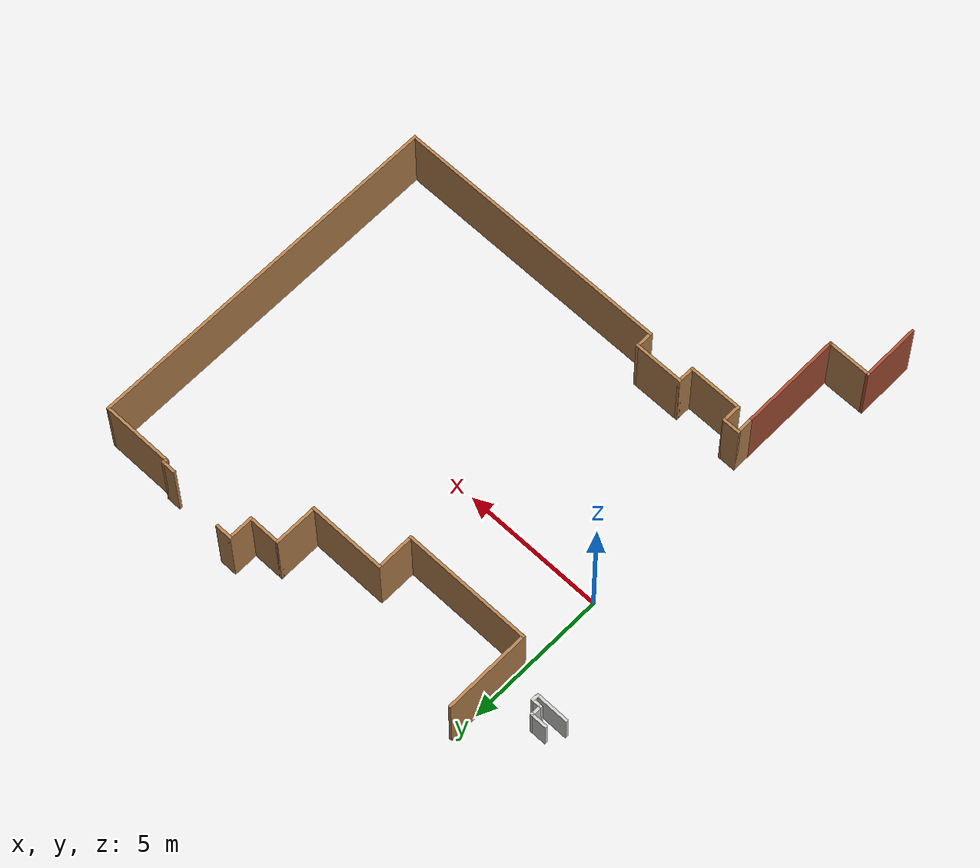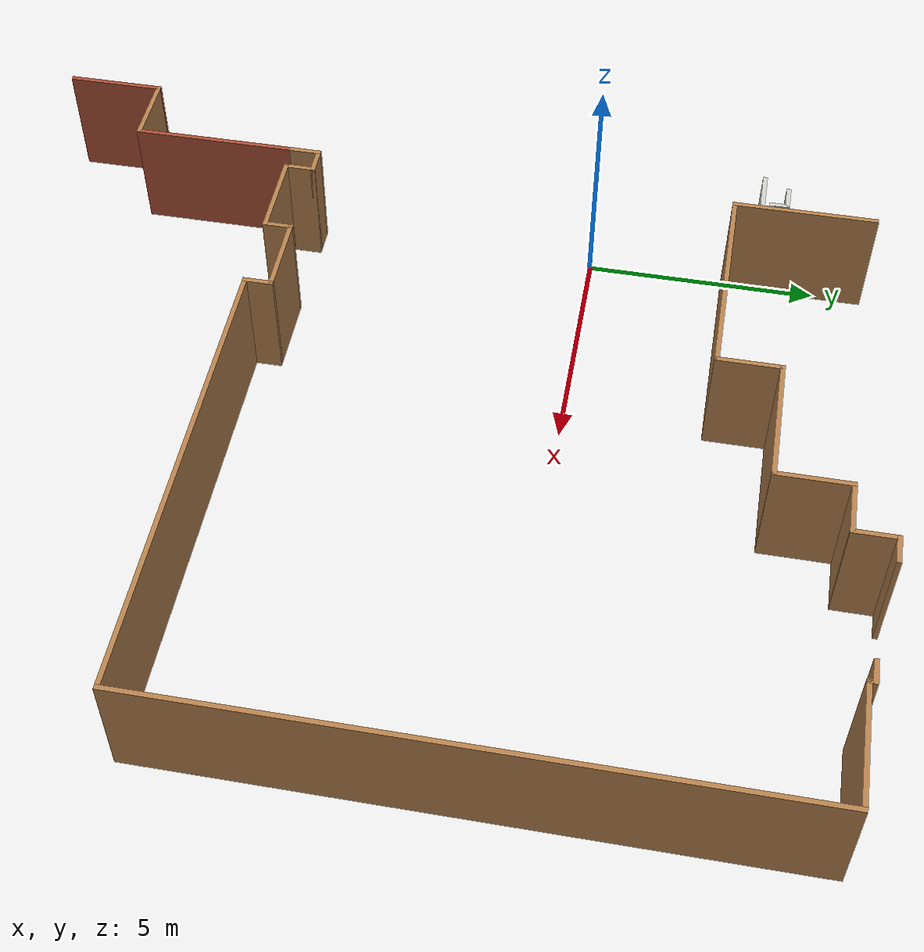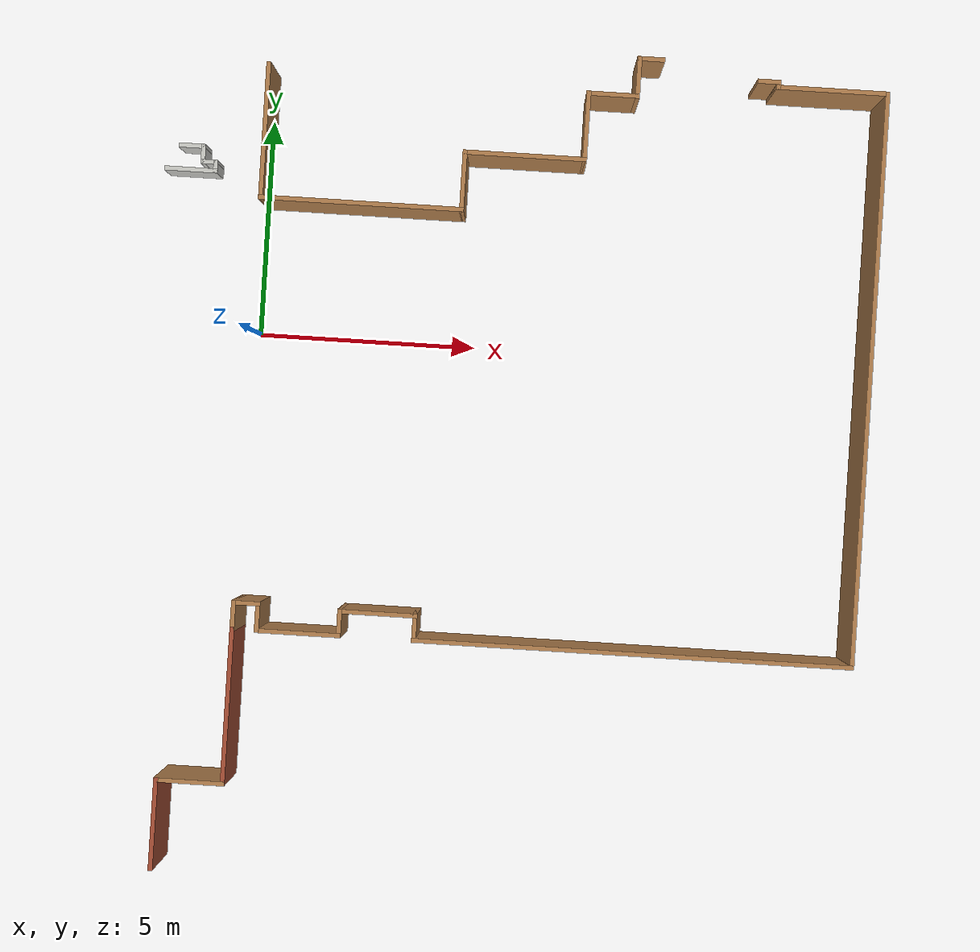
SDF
<sdf version="1.7">
 <model name="miraikan_3F_gate_and_elevator">
  <link name="Wall_119">
   <pose>-3.8625 -11.67 0 0 -0 1.5708</pose>
   <visual name="Wall_119_Visual">
    <pose>0 0 1.25 0 -0 0</pose>
    <geometry><box><size>2.1 0.1 2.5</size></box></geometry>
    <material>
     <script><uri>file://media/materials/scripts/gazebo.material</uri><name>Gazebo/Bricks</name></script>
     <ambient>1 1 1 1</ambient>
     <shader type="pixel"/>
    </material>
    <meta><layer>0</layer></meta>
   </visual>
   <collision name="Wall_119_Collision">
    <pose>0 0 1.25 0 -0 0</pose>
    <geometry><box><size>2.1 0.1 2.5</size></box></geometry>
    <surface>
     <friction>
      <ode><mu>1</mu><mu2>1</mu2><fdir1>0 0 0</fdir1><slip1>0</slip1><slip2>0</slip2></ode>
      <torsional>
       <coefficient>1</coefficient>
       <patch_radius>0</patch_radius>
       <surface_radius>0</surface_radius>
       <use_patch_radius>1</use_patch_radius>
       <ode><slip>0</slip></ode>
      </torsional>
     </friction>
     <bounce><restitution_coefficient>0</restitution_coefficient><threshold>1e+06</threshold></bounce>
     <contact>
      <collide_without_contact>0</collide_without_contact>
      <collide_without_contact_bitmask>1</collide_without_contact_bitmask>
      <collide_bitmask>1</collide_bitmask>
      <ode>
       <soft_cfm>0</soft_cfm>
       <soft_erp>0.2</soft_erp>
       <kp>1e+13</kp>
       <kd>1</kd>
       <max_vel>0.01</max_vel>
       <min_depth>0</min_depth>
      </ode>
      <bullet>
       <split_impulse>1</split_impulse>
       <split_impulse_penetration_threshold>-0.01</split_impulse_penetration_threshold>
       <soft_cfm>0</soft_cfm>
       <soft_erp>0.2</soft_erp>
       <kp>1e+13</kp>
       <kd>1</kd>
      </bullet>
     </contact>
    </surface>
   </collision>
  </link>
  <link name="Wall_121">
   <pose>-3.1125 -10.67 0 0 -0 0</pose>
   <visual name="Wall_121_Visual">
    <pose>0 0 1.25 0 -0 0</pose>
    <geometry><box><size>1.6 0.1 2.5</size></box></geometry>
    <material>
     <script><uri>file://media/materials/scripts/gazebo.material</uri><name>Gazebo/Wood</name></script>
     <ambient>1 1 1 1</ambient>
     <shader type="pixel"/>
    </material>
    <meta><layer>0</layer></meta>
   </visual>
   <collision name="Wall_121_Collision">
    <pose>0 0 1.25 0 -0 0</pose>
    <geometry><box><size>1.6 0.1 2.5</size></box></geometry>
    <surface>
     <friction>
      <ode><mu>1</mu><mu2>1</mu2><fdir1>0 0 0</fdir1><slip1>0</slip1><slip2>0</slip2></ode>
      <torsional>
       <coefficient>1</coefficient>
       <patch_radius>0</patch_radius>
       <surface_radius>0</surface_radius>
       <use_patch_radius>1</use_patch_radius>
       <ode><slip>0</slip></ode>
      </torsional>
     </friction>
     <bounce><restitution_coefficient>0</restitution_coefficient><threshold>1e+06</threshold></bounce>
     <contact>
      <collide_without_contact>0</collide_without_contact>
      <collide_without_contact_bitmask>1</collide_without_contact_bitmask>
      <collide_bitmask>1</collide_bitmask>
      <ode>
       <soft_cfm>0</soft_cfm>
       <soft_erp>0.2</soft_erp>
       <kp>1e+13</kp>
       <kd>1</kd>
       <max_vel>0.01</max_vel>
       <min_depth>0</min_depth>
      </ode>
      <bullet>
       <split_impulse>1</split_impulse>
       <split_impulse_penetration_threshold>-0.01</split_impulse_penetration_threshold>
       <soft_cfm>0</soft_cfm>
       <soft_erp>0.2</soft_erp>
       <kp>1e+13</kp>
       <kd>1</kd>
      </bullet>
     </contact>
    </surface>
   </collision>
  </link>
  <link name="Wall_123">
   <pose>-2.3625 -8.92 0 0 -0 1.5708</pose>
   <visual name="Wall_123_Visual">
    <pose>0 0 1.25 0 -0 0</pose>
    <geometry><box><size>3.6 0.1 2.5</size></box></geometry>
    <material>
     <script><uri>file://media/materials/scripts/gazebo.material</uri><name>Gazebo/Bricks</name></script>
     <ambient>1 1 1 1</ambient>
     <shader type="pixel"/>
    </material>
    <meta><layer>0</layer></meta>
   </visual>
   <collision name="Wall_123_Collision">
    <pose>0 0 1.25 0 -0 0</pose>
    <geometry><box><size>3.6 0.1 2.5</size></box></geometry>
    <surface>
     <friction>
      <ode><mu>1</mu><mu2>1</mu2><fdir1>0 0 0</fdir1><slip1>0</slip1><slip2>0</slip2></ode>
      <torsional>
       <coefficient>1</coefficient>
       <patch_radius>0</patch_radius>
       <surface_radius>0</surface_radius>
       <use_patch_radius>1</use_patch_radius>
       <ode><slip>0</slip></ode>
      </torsional>
     </friction>
     <bounce><restitution_coefficient>0</restitution_coefficient><threshold>1e+06</threshold></bounce>
     <contact>
      <collide_without_contact>0</collide_without_contact>
      <collide_without_contact_bitmask>1</collide_without_contact_bitmask>
      <collide_bitmask>1</collide_bitmask>
      <ode>
       <soft_cfm>0</soft_cfm>
       <soft_erp>0.2</soft_erp>
       <kp>1e+13</kp>
       <kd>1</kd>
       <max_vel>0.01</max_vel>
       <min_depth>0</min_depth>
      </ode>
      <bullet>
       <split_impulse>1</split_impulse>
       <split_impulse_penetration_threshold>-0.01</split_impulse_penetration_threshold>
       <soft_cfm>0</soft_cfm>
       <soft_erp>0.2</soft_erp>
       <kp>1e+13</kp>
       <kd>1</kd>
      </bullet>
     </contact>
    </surface>
   </collision>
  </link>
  <link name="Wall_125">
   <pose>-2.3625 -6.87 0 0 -0 1.5708</pose>
   <visual name="Wall_125_Visual">
    <pose>0 0 1.25 0 -0 0</pose>
    <geometry><box><size>0.7 0.1 2.5</size></box></geometry>
    <material>
     <script><uri>file://media/materials/scripts/gazebo.material</uri><name>Gazebo/Wood</name></script>
     <ambient>1 1 1 1</ambient>
     <shader type="pixel"/>
    </material>
    <meta><layer>0</layer></meta>
   </visual>
   <collision name="Wall_125_Collision">
    <pose>0 0 1.25 0 -0 0</pose>
    <geometry><box><size>0.7 0.1 2.5</size></box></geometry>
    <surface>
     <friction>
      <ode><mu>1</mu><mu2>1</mu2><fdir1>0 0 0</fdir1><slip1>0</slip1><slip2>0</slip2></ode>
      <torsional>
       <coefficient>1</coefficient>
       <patch_radius>0</patch_radius>
       <surface_radius>0</surface_radius>
       <use_patch_radius>1</use_patch_radius>
       <ode><slip>0</slip></ode>
      </torsional>
     </friction>
     <bounce><restitution_coefficient>0</restitution_coefficient><threshold>1e+06</threshold></bounce>
     <contact>
      <collide_without_contact>0</collide_without_contact>
      <collide_without_contact_bitmask>1</collide_without_contact_bitmask>
      <collide_bitmask>1</collide_bitmask>
      <ode>
       <soft_cfm>0</soft_cfm>
       <soft_erp>0.2</soft_erp>
       <kp>1e+13</kp>
       <kd>1</kd>
       <max_vel>0.01</max_vel>
       <min_depth>0</min_depth>
      </ode>
      <bullet>
       <split_impulse>1</split_impulse>
       <split_impulse_penetration_threshold>-0.01</split_impulse_penetration_threshold>
       <soft_cfm>0</soft_cfm>
       <soft_erp>0.2</soft_erp>
       <kp>1e+13</kp>
       <kd>1</kd>
      </bullet>
     </contact>
    </surface>
   </collision>
  </link>
  <link name="Wall_127">
   <pose>-2.0875 -6.57 0 0 -0 0</pose>
   <visual name="Wall_127_Visual">
    <pose>0 0 1.25 0 -0 0</pose>
    <geometry><box><size>0.65 0.1 2.5</size></box></geometry>
    <material>
     <script><uri>file://media/materials/scripts/gazebo.material</uri><name>Gazebo/Wood</name></script>
     <ambient>1 1 1 1</ambient>
     <shader type="pixel"/>
    </material>
    <meta><layer>0</layer></meta>
   </visual>
   <collision name="Wall_127_Collision">
    <pose>0 0 1.25 0 -0 0</pose>
    <geometry><box><size>0.65 0.1 2.5</size></box></geometry>
    <surface>
     <friction>
      <ode><mu>1</mu><mu2>1</mu2><fdir1>0 0 0</fdir1><slip1>0</slip1><slip2>0</slip2></ode>
      <torsional>
       <coefficient>1</coefficient>
       <patch_radius>0</patch_radius>
       <surface_radius>0</surface_radius>
       <use_patch_radius>1</use_patch_radius>
       <ode><slip>0</slip></ode>
      </torsional>
     </friction>
     <bounce><restitution_coefficient>0</restitution_coefficient><threshold>1e+06</threshold></bounce>
     <contact>
      <collide_without_contact>0</collide_without_contact>
      <collide_without_contact_bitmask>1</collide_without_contact_bitmask>
      <collide_bitmask>1</collide_bitmask>
      <ode>
       <soft_cfm>0</soft_cfm>
       <soft_erp>0.2</soft_erp>
       <kp>1e+13</kp>
       <kd>1</kd>
       <max_vel>0.01</max_vel>
       <min_depth>0</min_depth>
      </ode>
      <bullet>
       <split_impulse>1</split_impulse>
       <split_impulse_penetration_threshold>-0.01</split_impulse_penetration_threshold>
       <soft_cfm>0</soft_cfm>
       <soft_erp>0.2</soft_erp>
       <kp>1e+13</kp>
       <kd>1</kd>
      </bullet>
     </contact>
    </surface>
   </collision>
  </link>
  <link name="Wall_129">
   <pose>-1.8125 -6.87 0 0 0 -1.5708</pose>
   <visual name="Wall_129_Visual">
    <pose>0 0 1.25 0 -0 0</pose>
    <geometry><box><size>0.7 0.1 2.5</size></box></geometry>
    <material>
     <script><uri>file://media/materials/scripts/gazebo.material</uri><name>Gazebo/Wood</name></script>
     <ambient>1 1 1 1</ambient>
     <shader type="pixel"/>
    </material>
    <meta><layer>0</layer></meta>
   </visual>
   <collision name="Wall_129_Collision">
    <pose>0 0 1.25 0 -0 0</pose>
    <geometry><box><size>0.7 0.1 2.5</size></box></geometry>
    <surface>
     <friction>
      <ode><mu>1</mu><mu2>1</mu2><fdir1>0 0 0</fdir1><slip1>0</slip1><slip2>0</slip2></ode>
      <torsional>
       <coefficient>1</coefficient>
       <patch_radius>0</patch_radius>
       <surface_radius>0</surface_radius>
       <use_patch_radius>1</use_patch_radius>
       <ode><slip>0</slip></ode>
      </torsional>
     </friction>
     <bounce><restitution_coefficient>0</restitution_coefficient><threshold>1e+06</threshold></bounce>
     <contact>
      <collide_without_contact>0</collide_without_contact>
      <collide_without_contact_bitmask>1</collide_without_contact_bitmask>
      <collide_bitmask>1</collide_bitmask>
      <ode>
       <soft_cfm>0</soft_cfm>
       <soft_erp>0.2</soft_erp>
       <kp>1e+13</kp>
       <kd>1</kd>
       <max_vel>0.01</max_vel>
       <min_depth>0</min_depth>
      </ode>
      <bullet>
       <split_impulse>1</split_impulse>
       <split_impulse_penetration_threshold>-0.01</split_impulse_penetration_threshold>
       <soft_cfm>0</soft_cfm>
       <soft_erp>0.2</soft_erp>
       <kp>1e+13</kp>
       <kd>1</kd>
      </bullet>
     </contact>
    </surface>
   </collision>
  </link>
  <link name="Wall_131">
   <pose>-0.8875 -7.17 0 0 -0 0</pose>
   <visual name="Wall_131_Visual">
    <pose>0 0 1.25 0 -0 0</pose>
    <geometry><box><size>1.95 0.1 2.5</size></box></geometry>
    <material>
     <script><uri>file://media/materials/scripts/gazebo.material</uri><name>Gazebo/Wood</name></script>
     <ambient>1 1 1 1</ambient>
     <shader type="pixel"/>
    </material>
    <meta><layer>0</layer></meta>
   </visual>
   <collision name="Wall_131_Collision">
    <pose>0 0 1.25 0 -0 0</pose>
    <geometry><box><size>1.95 0.1 2.5</size></box></geometry>
    <surface>
     <friction>
      <ode><mu>1</mu><mu2>1</mu2><fdir1>0 0 0</fdir1><slip1>0</slip1><slip2>0</slip2></ode>
      <torsional>
       <coefficient>1</coefficient>
       <patch_radius>0</patch_radius>
       <surface_radius>0</surface_radius>
       <use_patch_radius>1</use_patch_radius>
       <ode><slip>0</slip></ode>
      </torsional>
     </friction>
     <bounce><restitution_coefficient>0</restitution_coefficient><threshold>1e+06</threshold></bounce>
     <contact>
      <collide_without_contact>0</collide_without_contact>
      <collide_without_contact_bitmask>1</collide_without_contact_bitmask>
      <collide_bitmask>1</collide_bitmask>
      <ode>
       <soft_cfm>0</soft_cfm>
       <soft_erp>0.2</soft_erp>
       <kp>1e+13</kp>
       <kd>1</kd>
       <max_vel>0.01</max_vel>
       <min_depth>0</min_depth>
      </ode>
      <bullet>
       <split_impulse>1</split_impulse>
       <split_impulse_penetration_threshold>-0.01</split_impulse_penetration_threshold>
       <soft_cfm>0</soft_cfm>
       <soft_erp>0.2</soft_erp>
       <kp>1e+13</kp>
       <kd>1</kd>
      </bullet>
     </contact>
    </surface>
   </collision>
  </link>
  <link name="Wall_133">
   <pose>0.0375 -6.895 0 0 -0 1.5708</pose>
   <visual name="Wall_133_Visual">
    <pose>0 0 1.25 0 -0 0</pose>
    <geometry><box><size>0.65 0.1 2.5</size></box></geometry>
    <material>
     <script><uri>file://media/materials/scripts/gazebo.material</uri><name>Gazebo/Wood</name></script>
     <ambient>1 1 1 1</ambient>
     <shader type="pixel"/>
    </material>
    <meta><layer>0</layer></meta>
   </visual>
   <collision name="Wall_133_Collision">
    <pose>0 0 1.25 0 -0 0</pose>
    <geometry><box><size>0.65 0.1 2.5</size></box></geometry>
    <surface>
     <friction>
      <ode><mu>1</mu><mu2>1</mu2><fdir1>0 0 0</fdir1><slip1>0</slip1><slip2>0</slip2></ode>
      <torsional>
       <coefficient>1</coefficient>
       <patch_radius>0</patch_radius>
       <surface_radius>0</surface_radius>
       <use_patch_radius>1</use_patch_radius>
       <ode><slip>0</slip></ode>
      </torsional>
     </friction>
     <bounce><restitution_coefficient>0</restitution_coefficient><threshold>1e+06</threshold></bounce>
     <contact>
      <collide_without_contact>0</collide_without_contact>
      <collide_without_contact_bitmask>1</collide_without_contact_bitmask>
      <collide_bitmask>1</collide_bitmask>
      <ode>
       <soft_cfm>0</soft_cfm>
       <soft_erp>0.2</soft_erp>
       <kp>1e+13</kp>
       <kd>1</kd>
       <max_vel>0.01</max_vel>
       <min_depth>0</min_depth>
      </ode>
      <bullet>
       <split_impulse>1</split_impulse>
       <split_impulse_penetration_threshold>-0.01</split_impulse_penetration_threshold>
       <soft_cfm>0</soft_cfm>
       <soft_erp>0.2</soft_erp>
       <kp>1e+13</kp>
       <kd>1</kd>
      </bullet>
     </contact>
    </surface>
   </collision>
  </link>
  <link name="Wall_135">
   <pose>0.8875 -6.62 0 0 -0 0</pose>
   <visual name="Wall_135_Visual">
    <pose>0 0 1.25 0 -0 0</pose>
    <geometry><box><size>1.8 0.1 2.5</size></box></geometry>
    <material>
     <script><uri>file://media/materials/scripts/gazebo.material</uri><name>Gazebo/Wood</name></script>
     <ambient>1 1 1 1</ambient>
     <shader type="pixel"/>
    </material>
    <meta><layer>0</layer></meta>
   </visual>
   <collision name="Wall_135_Collision">
    <pose>0 0 1.25 0 -0 0</pose>
    <geometry><box><size>1.8 0.1 2.5</size></box></geometry>
    <surface>
     <friction>
      <ode><mu>1</mu><mu2>1</mu2><fdir1>0 0 0</fdir1><slip1>0</slip1><slip2>0</slip2></ode>
      <torsional>
       <coefficient>1</coefficient>
       <patch_radius>0</patch_radius>
       <surface_radius>0</surface_radius>
       <use_patch_radius>1</use_patch_radius>
       <ode><slip>0</slip></ode>
      </torsional>
     </friction>
     <bounce><restitution_coefficient>0</restitution_coefficient><threshold>1e+06</threshold></bounce>
     <contact>
      <collide_without_contact>0</collide_without_contact>
      <collide_without_contact_bitmask>1</collide_without_contact_bitmask>
      <collide_bitmask>1</collide_bitmask>
      <ode>
       <soft_cfm>0</soft_cfm>
       <soft_erp>0.2</soft_erp>
       <kp>1e+13</kp>
       <kd>1</kd>
       <max_vel>0.01</max_vel>
       <min_depth>0</min_depth>
      </ode>
      <bullet>
       <split_impulse>1</split_impulse>
       <split_impulse_penetration_threshold>-0.01</split_impulse_penetration_threshold>
       <soft_cfm>0</soft_cfm>
       <soft_erp>0.2</soft_erp>
       <kp>1e+13</kp>
       <kd>1</kd>
      </bullet>
     </contact>
    </surface>
   </collision>
  </link>
  <link name="Wall_137">
   <pose>1.7375 -6.895 0 0 0 -1.5708</pose>
   <visual name="Wall_137_Visual">
    <pose>0 0 1.25 0 -0 0</pose>
    <geometry><box><size>0.65 0.1 2.5</size></box></geometry>
    <material>
     <script><uri>file://media/materials/scripts/gazebo.material</uri><name>Gazebo/Wood</name></script>
     <ambient>1 1 1 1</ambient>
     <shader type="pixel"/>
    </material>
    <meta><layer>0</layer></meta>
   </visual>
   <collision name="Wall_137_Collision">
    <pose>0 0 1.25 0 -0 0</pose>
    <geometry><box><size>0.65 0.1 2.5</size></box></geometry>
    <surface>
     <friction>
      <ode><mu>1</mu><mu2>1</mu2><fdir1>0 0 0</fdir1><slip1>0</slip1><slip2>0</slip2></ode>
      <torsional>
       <coefficient>1</coefficient>
       <patch_radius>0</patch_radius>
       <surface_radius>0</surface_radius>
       <use_patch_radius>1</use_patch_radius>
       <ode><slip>0</slip></ode>
      </torsional>
     </friction>
     <bounce><restitution_coefficient>0</restitution_coefficient><threshold>1e+06</threshold></bounce>
     <contact>
      <collide_without_contact>0</collide_without_contact>
      <collide_without_contact_bitmask>1</collide_without_contact_bitmask>
      <collide_bitmask>1</collide_bitmask>
      <ode>
       <soft_cfm>0</soft_cfm>
       <soft_erp>0.2</soft_erp>
       <kp>1e+13</kp>
       <kd>1</kd>
       <max_vel>0.01</max_vel>
       <min_depth>0</min_depth>
      </ode>
      <bullet>
       <split_impulse>1</split_impulse>
       <split_impulse_penetration_threshold>-0.01</split_impulse_penetration_threshold>
       <soft_cfm>0</soft_cfm>
       <soft_erp>0.2</soft_erp>
       <kp>1e+13</kp>
       <kd>1</kd>
      </bullet>
     </contact>
    </surface>
   </collision>
  </link>
  <link name="Wall_268">
   <pose>8.9575 5.9 0 0 -0 0</pose>
   <visual name="Wall_268_Visual">
    <pose>0 0 1.25 0 -0 0</pose>
    <geometry><box><size>0.52 0.1 2.5</size></box></geometry>
    <material>
     <script><uri>file://media/materials/scripts/gazebo.material</uri><name>Gazebo/Wood</name></script>
     <ambient>1 1 1 1</ambient>
     <shader type="pixel"/>
    </material>
    <meta><layer>0</layer></meta>
   </visual>
   <collision name="Wall_268_Collision">
    <pose>0 0 1.25 0 -0 0</pose>
    <geometry><box><size>0.52 0.1 2.5</size></box></geometry>
    <surface>
     <friction>
      <ode><mu>1</mu><mu2>1</mu2><fdir1>0 0 0</fdir1><slip1>0</slip1><slip2>0</slip2></ode>
      <torsional>
       <coefficient>1</coefficient>
       <patch_radius>0</patch_radius>
       <surface_radius>0</surface_radius>
       <use_patch_radius>1</use_patch_radius>
       <ode><slip>0</slip></ode>
      </torsional>
     </friction>
     <bounce><restitution_coefficient>0</restitution_coefficient><threshold>1e+06</threshold></bounce>
     <contact>
      <collide_without_contact>0</collide_without_contact>
      <collide_without_contact_bitmask>1</collide_without_contact_bitmask>
      <collide_bitmask>1</collide_bitmask>
      <ode>
       <soft_cfm>0</soft_cfm>
       <soft_erp>0.2</soft_erp>
       <kp>1e+13</kp>
       <kd>1</kd>
       <max_vel>0.01</max_vel>
       <min_depth>0</min_depth>
      </ode>
      <bullet>
       <split_impulse>1</split_impulse>
       <split_impulse_penetration_threshold>-0.01</split_impulse_penetration_threshold>
       <soft_cfm>0</soft_cfm>
       <soft_erp>0.2</soft_erp>
       <kp>1e+13</kp>
       <kd>1</kd>
      </bullet>
     </contact>
    </surface>
   </collision>
  </link>
  <link name="Wall_270">
   <pose>9.1675 5.845 0 0 0 -1.5708</pose>
   <visual name="Wall_270_Visual">
    <pose>0 0 1.25 0 -0 0</pose>
    <geometry><box><size>0.21 0.1 2.5</size></box></geometry>
    <material>
     <script><uri>file://media/materials/scripts/gazebo.material</uri><name>Gazebo/Wood</name></script>
     <ambient>1 1 1 1</ambient>
     <shader type="pixel"/>
    </material>
    <meta><layer>0</layer></meta>
   </visual>
   <collision name="Wall_270_Collision">
    <pose>0 0 1.25 0 -0 0</pose>
    <geometry><box><size>0.21 0.1 2.5</size></box></geometry>
    <surface>
     <friction>
      <ode><mu>1</mu><mu2>1</mu2><fdir1>0 0 0</fdir1><slip1>0</slip1><slip2>0</slip2></ode>
      <torsional>
       <coefficient>1</coefficient>
       <patch_radius>0</patch_radius>
       <surface_radius>0</surface_radius>
       <use_patch_radius>1</use_patch_radius>
       <ode><slip>0</slip></ode>
      </torsional>
     </friction>
     <bounce><restitution_coefficient>0</restitution_coefficient><threshold>1e+06</threshold></bounce>
     <contact>
      <collide_without_contact>0</collide_without_contact>
      <collide_without_contact_bitmask>1</collide_without_contact_bitmask>
      <collide_bitmask>1</collide_bitmask>
      <ode>
       <soft_cfm>0</soft_cfm>
       <soft_erp>0.2</soft_erp>
       <kp>1e+13</kp>
       <kd>1</kd>
       <max_vel>0.01</max_vel>
       <min_depth>0</min_depth>
      </ode>
      <bullet>
       <split_impulse>1</split_impulse>
       <split_impulse_penetration_threshold>-0.01</split_impulse_penetration_threshold>
       <soft_cfm>0</soft_cfm>
       <soft_erp>0.2</soft_erp>
       <kp>1e+13</kp>
       <kd>1</kd>
      </bullet>
     </contact>
    </surface>
   </collision>
  </link>
  <link name="Wall_273">
   <pose>6.6875 -7.17 0 0 -0 0</pose>
   <visual name="Wall_273_Visual">
    <pose>0 0 1.25 0 -0 0</pose>
    <geometry><box><size>10 0.1 2.5</size></box></geometry>
    <material>
     <script><uri>file://media/materials/scripts/gazebo.material</uri><name>Gazebo/Wood</name></script>
     <ambient>1 1 1 1</ambient>
     <shader type="pixel"/>
    </material>
    <meta><layer>0</layer></meta>
   </visual>
   <collision name="Wall_273_Collision">
    <pose>0 0 1.25 0 -0 0</pose>
    <geometry><box><size>10 0.1 2.5</size></box></geometry>
    <surface>
     <friction>
      <ode><mu>1</mu><mu2>1</mu2><fdir1>0 0 0</fdir1><slip1>0</slip1><slip2>0</slip2></ode>
      <torsional>
       <coefficient>1</coefficient>
       <patch_radius>0</patch_radius>
       <surface_radius>0</surface_radius>
       <use_patch_radius>1</use_patch_radius>
       <ode><slip>0</slip></ode>
      </torsional>
     </friction>
     <bounce><restitution_coefficient>0</restitution_coefficient><threshold>1e+06</threshold></bounce>
     <contact>
      <collide_without_contact>0</collide_without_contact>
      <collide_without_contact_bitmask>1</collide_without_contact_bitmask>
      <collide_bitmask>1</collide_bitmask>
      <ode>
       <soft_cfm>0</soft_cfm>
       <soft_erp>0.2</soft_erp>
       <kp>1e+13</kp>
       <kd>1</kd>
       <max_vel>0.01</max_vel>
       <min_depth>0</min_depth>
      </ode>
      <bullet>
       <split_impulse>1</split_impulse>
       <split_impulse_penetration_threshold>-0.01</split_impulse_penetration_threshold>
       <soft_cfm>0</soft_cfm>
       <soft_erp>0.2</soft_erp>
       <kp>1e+13</kp>
       <kd>1</kd>
      </bullet>
     </contact>
    </surface>
   </collision>
  </link>
  <link name="Wall_275">
   <pose>11.6375 -0.69 0 0 -0 1.5708</pose>
   <visual name="Wall_275_Visual">
    <pose>0 0 1.25 0 -0 0</pose>
    <geometry><box><size>13.06 0.1 2.5</size></box></geometry>
    <material>
     <script><uri>file://media/materials/scripts/gazebo.material</uri><name>Gazebo/Wood</name></script>
     <ambient>1 1 1 1</ambient>
     <shader type="pixel"/>
    </material>
    <meta><layer>0</layer></meta>
   </visual>
   <collision name="Wall_275_Collision">
    <pose>0 0 1.25 0 -0 0</pose>
    <geometry><box><size>13.06 0.1 2.5</size></box></geometry>
    <surface>
     <friction>
      <ode><mu>1</mu><mu2>1</mu2><fdir1>0 0 0</fdir1><slip1>0</slip1><slip2>0</slip2></ode>
      <torsional>
       <coefficient>1</coefficient>
       <patch_radius>0</patch_radius>
       <surface_radius>0</surface_radius>
       <use_patch_radius>1</use_patch_radius>
       <ode><slip>0</slip></ode>
      </torsional>
     </friction>
     <bounce><restitution_coefficient>0</restitution_coefficient><threshold>1e+06</threshold></bounce>
     <contact>
      <collide_without_contact>0</collide_without_contact>
      <collide_without_contact_bitmask>1</collide_without_contact_bitmask>
      <collide_bitmask>1</collide_bitmask>
      <ode>
       <soft_cfm>0</soft_cfm>
       <soft_erp>0.2</soft_erp>
       <kp>1e+13</kp>
       <kd>1</kd>
       <max_vel>0.01</max_vel>
       <min_depth>0</min_depth>
      </ode>
      <bullet>
       <split_impulse>1</split_impulse>
       <split_impulse_penetration_threshold>-0.01</split_impulse_penetration_threshold>
       <soft_cfm>0</soft_cfm>
       <soft_erp>0.2</soft_erp>
       <kp>1e+13</kp>
       <kd>1</kd>
      </bullet>
     </contact>
    </surface>
   </collision>
  </link>
  <link name="Wall_278">
   <pose>10.3675 5.79 0 0 -0 0</pose>
   <visual name="Wall_278_Visual">
    <pose>0 0 1.25 0 -0 0</pose>
    <geometry><box><size>2.5 0.1 2.5</size></box></geometry>
    <material>
     <script><uri>file://media/materials/scripts/gazebo.material</uri><name>Gazebo/Wood</name></script>
     <ambient>1 1 1 1</ambient>
     <shader type="pixel"/>
    </material>
    <meta><layer>0</layer></meta>
   </visual>
   <collision name="Wall_278_Collision">
    <pose>0 0 1.25 0 -0 0</pose>
    <geometry><box><size>2.5 0.1 2.5</size></box></geometry>
    <surface>
     <friction>
      <ode><mu>1</mu><mu2>1</mu2><fdir1>0 0 0</fdir1><slip1>0</slip1><slip2>0</slip2></ode>
      <torsional>
       <coefficient>1</coefficient>
       <patch_radius>0</patch_radius>
       <surface_radius>0</surface_radius>
       <use_patch_radius>1</use_patch_radius>
       <ode><slip>0</slip></ode>
      </torsional>
     </friction>
     <bounce><restitution_coefficient>0</restitution_coefficient><threshold>1e+06</threshold></bounce>
     <contact>
      <collide_without_contact>0</collide_without_contact>
      <collide_without_contact_bitmask>1</collide_without_contact_bitmask>
      <collide_bitmask>1</collide_bitmask>
      <ode>
       <soft_cfm>0</soft_cfm>
       <soft_erp>0.2</soft_erp>
       <kp>1e+13</kp>
       <kd>1</kd>
       <max_vel>0.01</max_vel>
       <min_depth>0</min_depth>
      </ode>
      <bullet>
       <split_impulse>1</split_impulse>
       <split_impulse_penetration_threshold>-0.01</split_impulse_penetration_threshold>
       <soft_cfm>0</soft_cfm>
       <soft_erp>0.2</soft_erp>
       <kp>1e+13</kp>
       <kd>1</kd>
      </bullet>
     </contact>
    </surface>
   </collision>
  </link>
  <link name="Wall_397">
   <pose>-4.1045 3.242 0 0 -0 0</pose>
   <visual name="Wall_397_Visual">
    <pose>0 0 0.625 0 -0 0</pose>
    <geometry><box><size>1.224 0.1 1.25</size></box></geometry>
    <material>
     <script><uri>file://media/materials/scripts/gazebo.material</uri><name>Gazebo/CeilingTiled</name></script>
     <ambient>1 1 1 1</ambient>
     <shader type="pixel"/>
    </material>
    <meta><layer>0</layer></meta>
   </visual>
   <collision name="Wall_397_Collision">
    <pose>0 0 0.625 0 -0 0</pose>
    <geometry><box><size>1.224 0.1 1.25</size></box></geometry>
    <surface>
     <friction>
      <ode><mu>1</mu><mu2>1</mu2><fdir1>0 0 0</fdir1><slip1>0</slip1><slip2>0</slip2></ode>
      <torsional>
       <coefficient>1</coefficient>
       <patch_radius>0</patch_radius>
       <surface_radius>0</surface_radius>
       <use_patch_radius>1</use_patch_radius>
       <ode><slip>0</slip></ode>
      </torsional>
     </friction>
     <bounce><restitution_coefficient>0</restitution_coefficient><threshold>1e+06</threshold></bounce>
     <contact>
      <collide_without_contact>0</collide_without_contact>
      <collide_without_contact_bitmask>1</collide_without_contact_bitmask>
      <collide_bitmask>1</collide_bitmask>
      <ode>
       <soft_cfm>0</soft_cfm>
       <soft_erp>0.2</soft_erp>
       <kp>1e+13</kp>
       <kd>1</kd>
       <max_vel>0.01</max_vel>
       <min_depth>0</min_depth>
      </ode>
      <bullet>
       <split_impulse>1</split_impulse>
       <split_impulse_penetration_threshold>-0.01</split_impulse_penetration_threshold>
       <soft_cfm>0</soft_cfm>
       <soft_erp>0.2</soft_erp>
       <kp>1e+13</kp>
       <kd>1</kd>
      </bullet>
     </contact>
    </surface>
   </collision>
  </link>
  <link name="Wall_422">
   <pose>-3.5425 3.342 0 0 -0 1.5708</pose>
   <visual name="Wall_422_Visual">
    <pose>0 0 0.625 0 -0 0</pose>
    <geometry><box><size>0.3 0.1 1.25</size></box></geometry>
    <material>
     <script><uri>file://media/materials/scripts/gazebo.material</uri><name>Gazebo/CeilingTiled</name></script>
     <ambient>1 1 1 1</ambient>
     <shader type="pixel"/>
    </material>
    <meta><layer>0</layer></meta>
   </visual>
   <collision name="Wall_422_Collision">
    <pose>0 0 0.625 0 -0 0</pose>
    <geometry><box><size>0.3 0.1 1.25</size></box></geometry>
    <surface>
     <friction>
      <ode><mu>1</mu><mu2>1</mu2><fdir1>0 0 0</fdir1><slip1>0</slip1><slip2>0</slip2></ode>
      <torsional>
       <coefficient>1</coefficient>
       <patch_radius>0</patch_radius>
       <surface_radius>0</surface_radius>
       <use_patch_radius>1</use_patch_radius>
       <ode><slip>0</slip></ode>
      </torsional>
     </friction>
     <bounce><restitution_coefficient>0</restitution_coefficient><threshold>1e+06</threshold></bounce>
     <contact>
      <collide_without_contact>0</collide_without_contact>
      <collide_without_contact_bitmask>1</collide_without_contact_bitmask>
      <collide_bitmask>1</collide_bitmask>
      <ode>
       <soft_cfm>0</soft_cfm>
       <soft_erp>0.2</soft_erp>
       <kp>1e+13</kp>
       <kd>1</kd>
       <max_vel>0.01</max_vel>
       <min_depth>0</min_depth>
      </ode>
      <bullet>
       <split_impulse>1</split_impulse>
       <split_impulse_penetration_threshold>-0.01</split_impulse_penetration_threshold>
       <soft_cfm>0</soft_cfm>
       <soft_erp>0.2</soft_erp>
       <kp>1e+13</kp>
       <kd>1</kd>
      </bullet>
     </contact>
    </surface>
   </collision>
  </link>
  <link name="Wall_437">
   <pose>-3.6925 3.442 0 0 -0 3.14159</pose>
   <visual name="Wall_437_Visual">
    <pose>0 0 0.625 0 -0 0</pose>
    <geometry><box><size>0.4 0.1 1.25</size></box></geometry>
    <material>
     <script><uri>file://media/materials/scripts/gazebo.material</uri><name>Gazebo/CeilingTiled</name></script>
     <ambient>1 1 1 1</ambient>
     <shader type="pixel"/>
    </material>
    <meta><layer>0</layer></meta>
   </visual>
   <collision name="Wall_437_Collision">
    <pose>0 0 0.625 0 -0 0</pose>
    <geometry><box><size>0.4 0.1 1.25</size></box></geometry>
    <surface>
     <friction>
      <ode><mu>1</mu><mu2>1</mu2><fdir1>0 0 0</fdir1><slip1>0</slip1><slip2>0</slip2></ode>
      <torsional>
       <coefficient>1</coefficient>
       <patch_radius>0</patch_radius>
       <surface_radius>0</surface_radius>
       <use_patch_radius>1</use_patch_radius>
       <ode><slip>0</slip></ode>
      </torsional>
     </friction>
     <bounce><restitution_coefficient>0</restitution_coefficient><threshold>1e+06</threshold></bounce>
     <contact>
      <collide_without_contact>0</collide_without_contact>
      <collide_without_contact_bitmask>1</collide_without_contact_bitmask>
      <collide_bitmask>1</collide_bitmask>
      <ode>
       <soft_cfm>0</soft_cfm>
       <soft_erp>0.2</soft_erp>
       <kp>1e+13</kp>
       <kd>1</kd>
       <max_vel>0.01</max_vel>
       <min_depth>0</min_depth>
      </ode>
      <bullet>
       <split_impulse>1</split_impulse>
       <split_impulse_penetration_threshold>-0.01</split_impulse_penetration_threshold>
       <soft_cfm>0</soft_cfm>
       <soft_erp>0.2</soft_erp>
       <kp>1e+13</kp>
       <kd>1</kd>
      </bullet>
     </contact>
    </surface>
   </collision>
  </link>
  <link name="Wall_444">
   <pose>-3.8425 3.617 0 0 -0 1.5708</pose>
   <visual name="Wall_444_Visual">
    <pose>0 0 0.625 0 -0 0</pose>
    <geometry><box><size>0.45 0.1 1.25</size></box></geometry>
    <material>
     <script><uri>file://media/materials/scripts/gazebo.material</uri><name>Gazebo/CeilingTiled</name></script>
     <ambient>1 1 1 1</ambient>
     <shader type="pixel"/>
    </material>
    <meta><layer>0</layer></meta>
   </visual>
   <collision name="Wall_444_Collision">
    <pose>0 0 0.625 0 -0 0</pose>
    <geometry><box><size>0.45 0.1 1.25</size></box></geometry>
    <surface>
     <friction>
      <ode><mu>1</mu><mu2>1</mu2><fdir1>0 0 0</fdir1><slip1>0</slip1><slip2>0</slip2></ode>
      <torsional>
       <coefficient>1</coefficient>
       <patch_radius>0</patch_radius>
       <surface_radius>0</surface_radius>
       <use_patch_radius>1</use_patch_radius>
       <ode><slip>0</slip></ode>
      </torsional>
     </friction>
     <bounce><restitution_coefficient>0</restitution_coefficient><threshold>1e+06</threshold></bounce>
     <contact>
      <collide_without_contact>0</collide_without_contact>
      <collide_without_contact_bitmask>1</collide_without_contact_bitmask>
      <collide_bitmask>1</collide_bitmask>
      <ode>
       <soft_cfm>0</soft_cfm>
       <soft_erp>0.2</soft_erp>
       <kp>1e+13</kp>
       <kd>1</kd>
       <max_vel>0.01</max_vel>
       <min_depth>0</min_depth>
      </ode>
      <bullet>
       <split_impulse>1</split_impulse>
       <split_impulse_penetration_threshold>-0.01</split_impulse_penetration_threshold>
       <soft_cfm>0</soft_cfm>
       <soft_erp>0.2</soft_erp>
       <kp>1e+13</kp>
       <kd>1</kd>
      </bullet>
     </contact>
    </surface>
   </collision>
  </link>
  <link name="Wall_446">
   <pose>-4.1045 3.792 0 0 -0 0</pose>
   <visual name="Wall_446_Visual">
    <pose>0 0 0.625 0 -0 0</pose>
    <geometry><box><size>0.624 0.1 1.25</size></box></geometry>
    <material>
     <script><uri>file://media/materials/scripts/gazebo.material</uri><name>Gazebo/CeilingTiled</name></script>
     <ambient>1 1 1 1</ambient>
     <shader type="pixel"/>
    </material>
    <meta><layer>0</layer></meta>
   </visual>
   <collision name="Wall_446_Collision">
    <pose>0 0 0.625 0 -0 0</pose>
    <geometry><box><size>0.624 0.1 1.25</size></box></geometry>
    <surface>
     <friction>
      <ode><mu>1</mu><mu2>1</mu2><fdir1>0 0 0</fdir1><slip1>0</slip1><slip2>0</slip2></ode>
      <torsional>
       <coefficient>1</coefficient>
       <patch_radius>0</patch_radius>
       <surface_radius>0</surface_radius>
       <use_patch_radius>1</use_patch_radius>
       <ode><slip>0</slip></ode>
      </torsional>
     </friction>
     <bounce><restitution_coefficient>0</restitution_coefficient><threshold>1e+06</threshold></bounce>
     <contact>
      <collide_without_contact>0</collide_without_contact>
      <collide_without_contact_bitmask>1</collide_without_contact_bitmask>
      <collide_bitmask>1</collide_bitmask>
      <ode>
       <soft_cfm>0</soft_cfm>
       <soft_erp>0.2</soft_erp>
       <kp>1e+13</kp>
       <kd>1</kd>
       <max_vel>0.01</max_vel>
       <min_depth>0</min_depth>
      </ode>
      <bullet>
       <split_impulse>1</split_impulse>
       <split_impulse_penetration_threshold>-0.01</split_impulse_penetration_threshold>
       <soft_cfm>0</soft_cfm>
       <soft_erp>0.2</soft_erp>
       <kp>1e+13</kp>
       <kd>1</kd>
      </bullet>
     </contact>
    </surface>
   </collision>
  </link>
  <link name="Wall_80">
   <pose>-2.3325 4.09 0 0 0 -1.5708</pose>
   <visual name="Wall_80_Visual">
    <pose>0 0 1.25 0 -0 0</pose>
    <geometry><box><size>3.1 0.1 2.5</size></box></geometry>
    <material>
     <script><uri>file://media/materials/scripts/gazebo.material</uri><name>Gazebo/Wood</name></script>
     <ambient>1 1 1 1</ambient>
     <shader type="pixel"/>
    </material>
    <meta><layer>0</layer></meta>
   </visual>
   <collision name="Wall_80_Collision">
    <pose>0 0 1.25 0 -0 0</pose>
    <geometry><box><size>3.1 0.1 2.5</size></box></geometry>
    <surface>
     <friction>
      <ode><mu>1</mu><mu2>1</mu2><fdir1>0 0 0</fdir1><slip1>0</slip1><slip2>0</slip2></ode>
      <torsional>
       <coefficient>1</coefficient>
       <patch_radius>0</patch_radius>
       <surface_radius>0</surface_radius>
       <use_patch_radius>1</use_patch_radius>
       <ode><slip>0</slip></ode>
      </torsional>
     </friction>
     <bounce><restitution_coefficient>0</restitution_coefficient><threshold>1e+06</threshold></bounce>
     <contact>
      <collide_without_contact>0</collide_without_contact>
      <collide_without_contact_bitmask>1</collide_without_contact_bitmask>
      <collide_bitmask>1</collide_bitmask>
      <ode>
       <soft_cfm>0</soft_cfm>
       <soft_erp>0.2</soft_erp>
       <kp>1e+13</kp>
       <kd>1</kd>
       <max_vel>0.01</max_vel>
       <min_depth>0</min_depth>
      </ode>
      <bullet>
       <split_impulse>1</split_impulse>
       <split_impulse_penetration_threshold>-0.01</split_impulse_penetration_threshold>
       <soft_cfm>0</soft_cfm>
       <soft_erp>0.2</soft_erp>
       <kp>1e+13</kp>
       <kd>1</kd>
      </bullet>
     </contact>
    </surface>
   </collision>
  </link>
  <link name="Wall_82">
   <pose>-0.0625 2.59 0 0 -0 0</pose>
   <visual name="Wall_82_Visual">
    <pose>0 0 1.25 0 -0 0</pose>
    <geometry><box><size>4.64 0.1 2.5</size></box></geometry>
    <material>
     <script><uri>file://media/materials/scripts/gazebo.material</uri><name>Gazebo/Wood</name></script>
     <ambient>1 1 1 1</ambient>
     <shader type="pixel"/>
    </material>
    <meta><layer>0</layer></meta>
   </visual>
   <collision name="Wall_82_Collision">
    <pose>0 0 1.25 0 -0 0</pose>
    <geometry><box><size>4.64 0.1 2.5</size></box></geometry>
    <surface>
     <friction>
      <ode><mu>1</mu><mu2>1</mu2><fdir1>0 0 0</fdir1><slip1>0</slip1><slip2>0</slip2></ode>
      <torsional>
       <coefficient>1</coefficient>
       <patch_radius>0</patch_radius>
       <surface_radius>0</surface_radius>
       <use_patch_radius>1</use_patch_radius>
       <ode><slip>0</slip></ode>
      </torsional>
     </friction>
     <bounce><restitution_coefficient>0</restitution_coefficient><threshold>1e+06</threshold></bounce>
     <contact>
      <collide_without_contact>0</collide_without_contact>
      <collide_without_contact_bitmask>1</collide_without_contact_bitmask>
      <collide_bitmask>1</collide_bitmask>
      <ode>
       <soft_cfm>0</soft_cfm>
       <soft_erp>0.2</soft_erp>
       <kp>1e+13</kp>
       <kd>1</kd>
       <max_vel>0.01</max_vel>
       <min_depth>0</min_depth>
      </ode>
      <bullet>
       <split_impulse>1</split_impulse>
       <split_impulse_penetration_threshold>-0.01</split_impulse_penetration_threshold>
       <soft_cfm>0</soft_cfm>
       <soft_erp>0.2</soft_erp>
       <kp>1e+13</kp>
       <kd>1</kd>
      </bullet>
     </contact>
    </surface>
   </collision>
  </link>
  <link name="Wall_84">
   <pose>2.2075 3.24 0 0 -0 1.5708</pose>
   <visual name="Wall_84_Visual">
    <pose>0 0 1.25 0 -0 0</pose>
    <geometry><box><size>1.4 0.1 2.5</size></box></geometry>
    <material>
     <script><uri>file://media/materials/scripts/gazebo.material</uri><name>Gazebo/Wood</name></script>
     <ambient>1 1 1 1</ambient>
     <shader type="pixel"/>
    </material>
    <meta><layer>0</layer></meta>
   </visual>
   <collision name="Wall_84_Collision">
    <pose>0 0 1.25 0 -0 0</pose>
    <geometry><box><size>1.4 0.1 2.5</size></box></geometry>
    <surface>
     <friction>
      <ode><mu>1</mu><mu2>1</mu2><fdir1>0 0 0</fdir1><slip1>0</slip1><slip2>0</slip2></ode>
      <torsional>
       <coefficient>1</coefficient>
       <patch_radius>0</patch_radius>
       <surface_radius>0</surface_radius>
       <use_patch_radius>1</use_patch_radius>
       <ode><slip>0</slip></ode>
      </torsional>
     </friction>
     <bounce><restitution_coefficient>0</restitution_coefficient><threshold>1e+06</threshold></bounce>
     <contact>
      <collide_without_contact>0</collide_without_contact>
      <collide_without_contact_bitmask>1</collide_without_contact_bitmask>
      <collide_bitmask>1</collide_bitmask>
      <ode>
       <soft_cfm>0</soft_cfm>
       <soft_erp>0.2</soft_erp>
       <kp>1e+13</kp>
       <kd>1</kd>
       <max_vel>0.01</max_vel>
       <min_depth>0</min_depth>
      </ode>
      <bullet>
       <split_impulse>1</split_impulse>
       <split_impulse_penetration_threshold>-0.01</split_impulse_penetration_threshold>
       <soft_cfm>0</soft_cfm>
       <soft_erp>0.2</soft_erp>
       <kp>1e+13</kp>
       <kd>1</kd>
      </bullet>
     </contact>
    </surface>
   </collision>
  </link>
  <link name="Wall_86">
   <pose>3.5575 3.89 0 0 -0 0</pose>
   <visual name="Wall_86_Visual">
    <pose>0 0 1.25 0 -0 0</pose>
    <geometry><box><size>2.8 0.1 2.5</size></box></geometry>
    <material>
     <script><uri>file://media/materials/scripts/gazebo.material</uri><name>Gazebo/Wood</name></script>
     <ambient>1 1 1 1</ambient>
     <shader type="pixel"/>
    </material>
    <meta><layer>0</layer></meta>
   </visual>
   <collision name="Wall_86_Collision">
    <pose>0 0 1.25 0 -0 0</pose>
    <geometry><box><size>2.8 0.1 2.5</size></box></geometry>
    <surface>
     <friction>
      <ode><mu>1</mu><mu2>1</mu2><fdir1>0 0 0</fdir1><slip1>0</slip1><slip2>0</slip2></ode>
      <torsional>
       <coefficient>1</coefficient>
       <patch_radius>0</patch_radius>
       <surface_radius>0</surface_radius>
       <use_patch_radius>1</use_patch_radius>
       <ode><slip>0</slip></ode>
      </torsional>
     </friction>
     <bounce><restitution_coefficient>0</restitution_coefficient><threshold>1e+06</threshold></bounce>
     <contact>
      <collide_without_contact>0</collide_without_contact>
      <collide_without_contact_bitmask>1</collide_without_contact_bitmask>
      <collide_bitmask>1</collide_bitmask>
      <ode>
       <soft_cfm>0</soft_cfm>
       <soft_erp>0.2</soft_erp>
       <kp>1e+13</kp>
       <kd>1</kd>
       <max_vel>0.01</max_vel>
       <min_depth>0</min_depth>
      </ode>
      <bullet>
       <split_impulse>1</split_impulse>
       <split_impulse_penetration_threshold>-0.01</split_impulse_penetration_threshold>
       <soft_cfm>0</soft_cfm>
       <soft_erp>0.2</soft_erp>
       <kp>1e+13</kp>
       <kd>1</kd>
      </bullet>
     </contact>
    </surface>
   </collision>
  </link>
  <link name="Wall_88">
   <pose>4.9075 4.64 0 0 -0 1.5708</pose>
   <visual name="Wall_88_Visual">
    <pose>0 0 1.25 0 -0 0</pose>
    <geometry><box><size>1.6 0.1 2.5</size></box></geometry>
    <material>
     <script><uri>file://media/materials/scripts/gazebo.material</uri><name>Gazebo/Wood</name></script>
     <ambient>1 1 1 1</ambient>
     <shader type="pixel"/>
    </material>
    <meta><layer>0</layer></meta>
   </visual>
   <collision name="Wall_88_Collision">
    <pose>0 0 1.25 0 -0 0</pose>
    <geometry><box><size>1.6 0.1 2.5</size></box></geometry>
    <surface>
     <friction>
      <ode><mu>1</mu><mu2>1</mu2><fdir1>0 0 0</fdir1><slip1>0</slip1><slip2>0</slip2></ode>
      <torsional>
       <coefficient>1</coefficient>
       <patch_radius>0</patch_radius>
       <surface_radius>0</surface_radius>
       <use_patch_radius>1</use_patch_radius>
       <ode><slip>0</slip></ode>
      </torsional>
     </friction>
     <bounce><restitution_coefficient>0</restitution_coefficient><threshold>1e+06</threshold></bounce>
     <contact>
      <collide_without_contact>0</collide_without_contact>
      <collide_without_contact_bitmask>1</collide_without_contact_bitmask>
      <collide_bitmask>1</collide_bitmask>
      <ode>
       <soft_cfm>0</soft_cfm>
       <soft_erp>0.2</soft_erp>
       <kp>1e+13</kp>
       <kd>1</kd>
       <max_vel>0.01</max_vel>
       <min_depth>0</min_depth>
      </ode>
      <bullet>
       <split_impulse>1</split_impulse>
       <split_impulse_penetration_threshold>-0.01</split_impulse_penetration_threshold>
       <soft_cfm>0</soft_cfm>
       <soft_erp>0.2</soft_erp>
       <kp>1e+13</kp>
       <kd>1</kd>
      </bullet>
     </contact>
    </surface>
   </collision>
  </link>
  <link name="Wall_90">
   <pose>5.4575 5.39 0 0 -0 0</pose>
   <visual name="Wall_90_Visual">
    <pose>0 0 1.25 0 -0 0</pose>
    <geometry><box><size>1.2 0.1 2.5</size></box></geometry>
    <material>
     <script><uri>file://media/materials/scripts/gazebo.material</uri><name>Gazebo/Wood</name></script>
     <ambient>1 1 1 1</ambient>
     <shader type="pixel"/>
    </material>
    <meta><layer>0</layer></meta>
   </visual>
   <collision name="Wall_90_Collision">
    <pose>0 0 1.25 0 -0 0</pose>
    <geometry><box><size>1.2 0.1 2.5</size></box></geometry>
    <surface>
     <friction>
      <ode><mu>1</mu><mu2>1</mu2><fdir1>0 0 0</fdir1><slip1>0</slip1><slip2>0</slip2></ode>
      <torsional>
       <coefficient>1</coefficient>
       <patch_radius>0</patch_radius>
       <surface_radius>0</surface_radius>
       <use_patch_radius>1</use_patch_radius>
       <ode><slip>0</slip></ode>
      </torsional>
     </friction>
     <bounce><restitution_coefficient>0</restitution_coefficient><threshold>1e+06</threshold></bounce>
     <contact>
      <collide_without_contact>0</collide_without_contact>
      <collide_without_contact_bitmask>1</collide_without_contact_bitmask>
      <collide_bitmask>1</collide_bitmask>
      <ode>
       <soft_cfm>0</soft_cfm>
       <soft_erp>0.2</soft_erp>
       <kp>1e+13</kp>
       <kd>1</kd>
       <max_vel>0.01</max_vel>
       <min_depth>0</min_depth>
      </ode>
      <bullet>
       <split_impulse>1</split_impulse>
       <split_impulse_penetration_threshold>-0.01</split_impulse_penetration_threshold>
       <soft_cfm>0</soft_cfm>
       <soft_erp>0.2</soft_erp>
       <kp>1e+13</kp>
       <kd>1</kd>
      </bullet>
     </contact>
    </surface>
   </collision>
  </link>
  <link name="Wall_92">
   <pose>6.0075 5.815 0 0 -0 1.5708</pose>
   <visual name="Wall_92_Visual">
    <pose>0 0 1.25 0 -0 0</pose>
    <geometry><box><size>0.95 0.1 2.5</size></box></geometry>
    <material>
     <script><uri>file://media/materials/scripts/gazebo.material</uri><name>Gazebo/Wood</name></script>
     <ambient>1 1 1 1</ambient>
     <shader type="pixel"/>
    </material>
    <meta><layer>0</layer></meta>
   </visual>
   <collision name="Wall_92_Collision">
    <pose>0 0 1.25 0 -0 0</pose>
    <geometry><box><size>0.95 0.1 2.5</size></box></geometry>
    <surface>
     <friction>
      <ode><mu>1</mu><mu2>1</mu2><fdir1>0 0 0</fdir1><slip1>0</slip1><slip2>0</slip2></ode>
      <torsional>
       <coefficient>1</coefficient>
       <patch_radius>0</patch_radius>
       <surface_radius>0</surface_radius>
       <use_patch_radius>1</use_patch_radius>
       <ode><slip>0</slip></ode>
      </torsional>
     </friction>
     <bounce><restitution_coefficient>0</restitution_coefficient><threshold>1e+06</threshold></bounce>
     <contact>
      <collide_without_contact>0</collide_without_contact>
      <collide_without_contact_bitmask>1</collide_without_contact_bitmask>
      <collide_bitmask>1</collide_bitmask>
      <ode>
       <soft_cfm>0</soft_cfm>
       <soft_erp>0.2</soft_erp>
       <kp>1e+13</kp>
       <kd>1</kd>
       <max_vel>0.01</max_vel>
       <min_depth>0</min_depth>
      </ode>
      <bullet>
       <split_impulse>1</split_impulse>
       <split_impulse_penetration_threshold>-0.01</split_impulse_penetration_threshold>
       <soft_cfm>0</soft_cfm>
       <soft_erp>0.2</soft_erp>
       <kp>1e+13</kp>
       <kd>1</kd>
      </bullet>
     </contact>
    </surface>
   </collision>
  </link>
  <link name="Wall_94">
   <pose>6.2675 6.24 0 0 -0 0</pose>
   <visual name="Wall_94_Visual">
    <pose>0 0 1.25 0 -0 0</pose>
    <geometry><box><size>0.62 0.1 2.5</size></box></geometry>
    <material>
     <script><uri>file://media/materials/scripts/gazebo.material</uri><name>Gazebo/Wood</name></script>
     <ambient>1 1 1 1</ambient>
     <shader type="pixel"/>
    </material>
    <meta><layer>0</layer></meta>
   </visual>
   <collision name="Wall_94_Collision">
    <pose>0 0 1.25 0 -0 0</pose>
    <geometry><box><size>0.62 0.1 2.5</size></box></geometry>
    <surface>
     <friction>
      <ode><mu>1</mu><mu2>1</mu2><fdir1>0 0 0</fdir1><slip1>0</slip1><slip2>0</slip2></ode>
      <torsional>
       <coefficient>1</coefficient>
       <patch_radius>0</patch_radius>
       <surface_radius>0</surface_radius>
       <use_patch_radius>1</use_patch_radius>
       <ode><slip>0</slip></ode>
      </torsional>
     </friction>
     <bounce><restitution_coefficient>0</restitution_coefficient><threshold>1e+06</threshold></bounce>
     <contact>
      <collide_without_contact>0</collide_without_contact>
      <collide_without_contact_bitmask>1</collide_without_contact_bitmask>
      <collide_bitmask>1</collide_bitmask>
      <ode>
       <soft_cfm>0</soft_cfm>
       <soft_erp>0.2</soft_erp>
       <kp>1e+13</kp>
       <kd>1</kd>
       <max_vel>0.01</max_vel>
       <min_depth>0</min_depth>
      </ode>
      <bullet>
       <split_impulse>1</split_impulse>
       <split_impulse_penetration_threshold>-0.01</split_impulse_penetration_threshold>
       <soft_cfm>0</soft_cfm>
       <soft_erp>0.2</soft_erp>
       <kp>1e+13</kp>
       <kd>1</kd>
      </bullet>
     </contact>
    </surface>
   </collision>
  </link>
  <static>1</static>
  <pose>2.36064 0.407989 0 0 -0 0</pose>
 </model>
</sdf>
